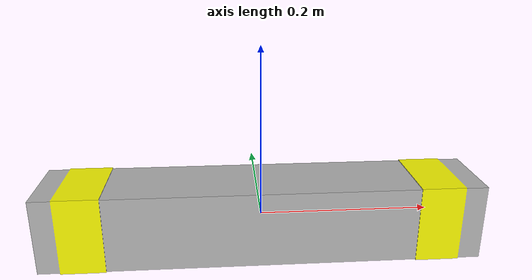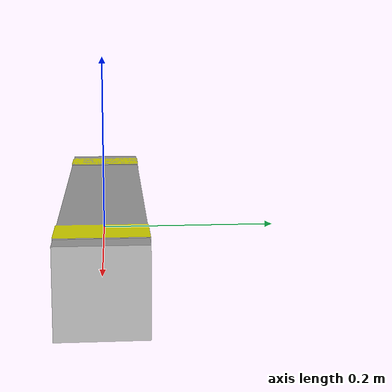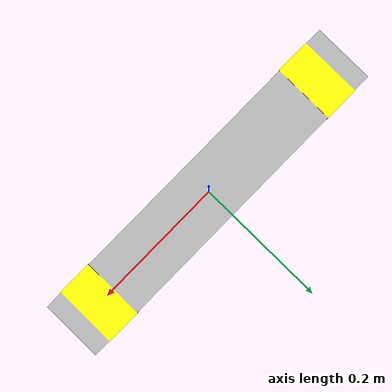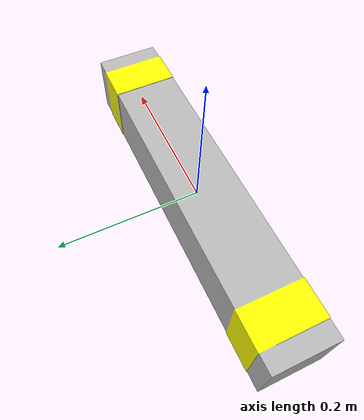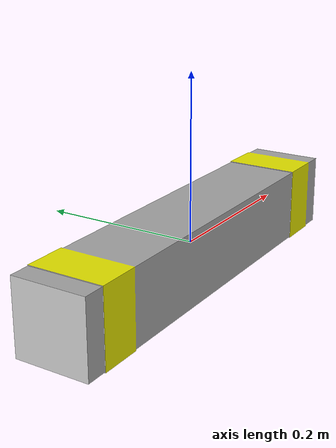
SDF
<?xml version="1.0" ?>
<sdf version="1.4">
  <model name="lumber_4x4x20">
    <link name="link">
      <inertial>
        <mass>1.37</mass>
        <inertia>
          <ixx>0.0018</ixx>
          <ixy>0.00</ixy>
          <ixz>0.00</ixz>
          <iyy>0.0303</iyy>
          <iyz>0.00</iyz>
          <izz>0.0303</izz>
        </inertia>
      </inertial>
      <collision name="collision">
        <geometry>
          <box>
            <size>0.508 0.0888 0.0888</size>
          </box>
        </geometry>
        <surface>
          <bounce>
            <restitution_coefficient>0.00</restitution_coefficient>
            <threshold>2</threshold>
          </bounce>
          <friction>
            <ode>
              <mu>10</mu>
              <mu2>10</mu2>
            </ode>
          </friction>
          <contact>
            <ode>
              <soft_cfm>0.001</soft_cfm>
              <kp>100000.0</kp>
              <kd>1000.0</kd>
            </ode>
          </contact>
        </surface>
      </collision>

      <visual name="visual">
        <geometry>
          <mesh>
            <uri>model://drc_practice_4x4x20/meshes/4x4x20.dae</uri>
          </mesh>
        </geometry>
      </visual>
    </link>
  </model>

</sdf>
